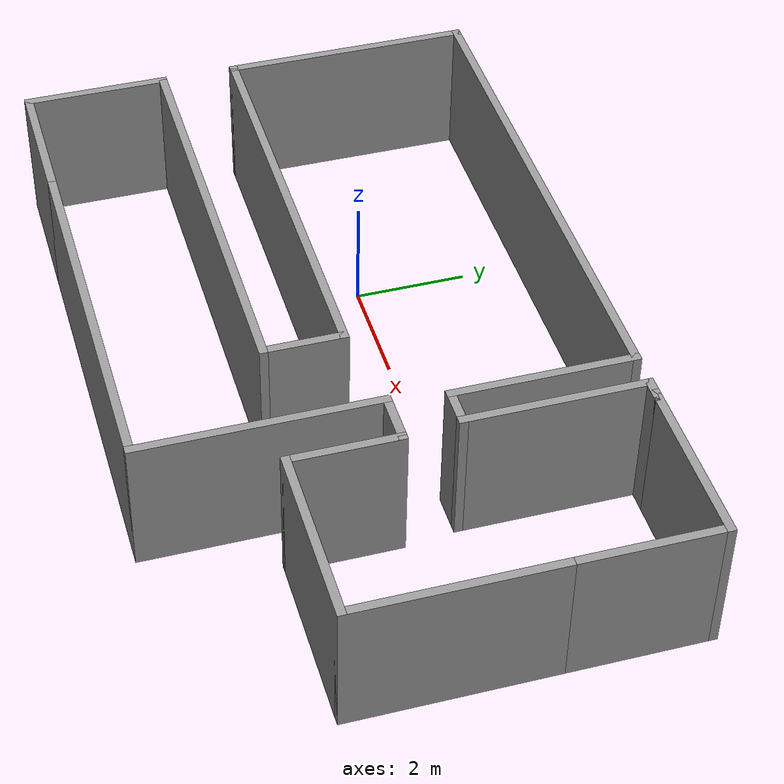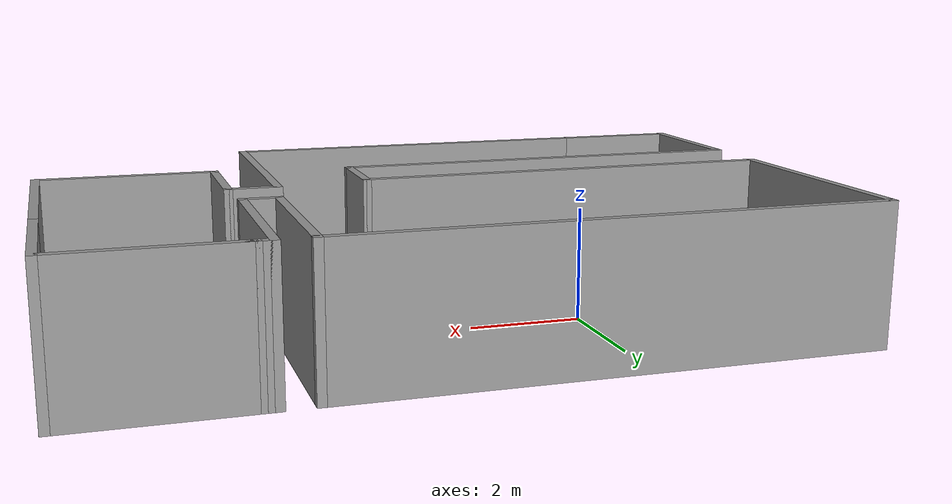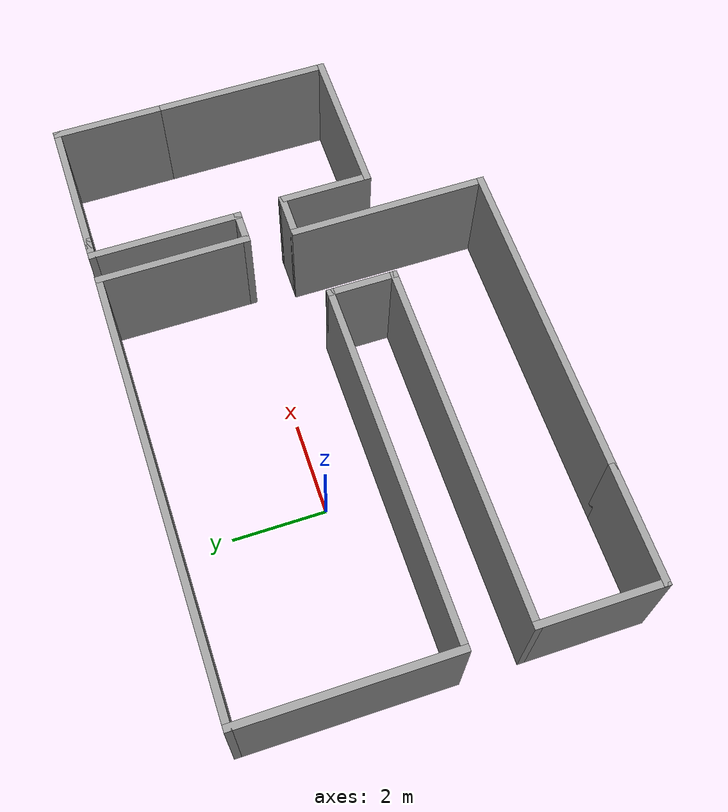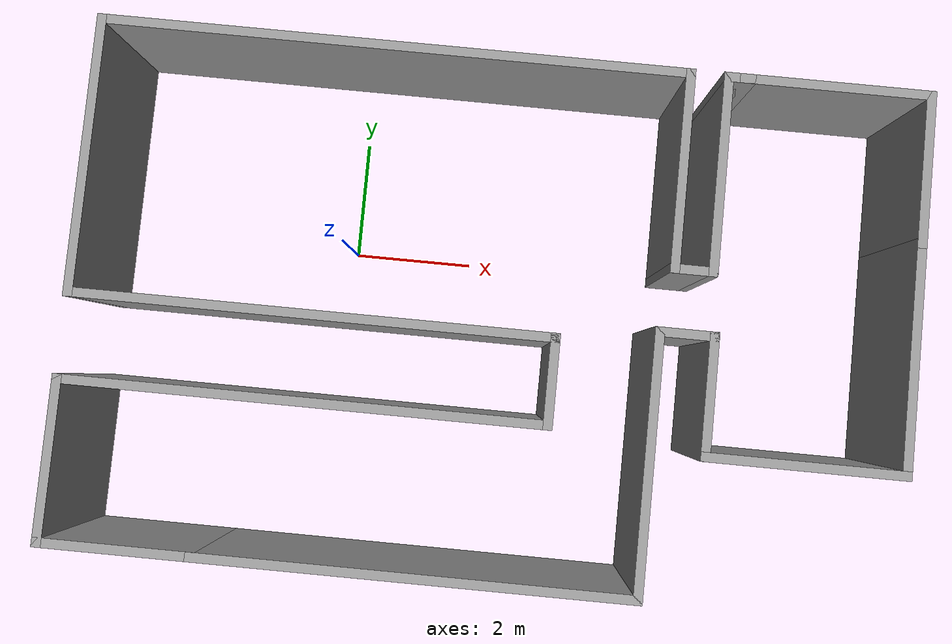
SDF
<?xml version='1.0'?>
<sdf version='1.7'>
  <model name='simple_rooms'>
    <pose>2.49975 -1.00745 0 0 -0 0</pose>
    <link name='Wall_0'>
      <collision name='Wall_0_Collision'>
        <geometry>
          <box>
            <size>7 0.15 2.5</size>
          </box>
        </geometry>
        <pose>0 0 1.25 0 -0 0</pose>
      </collision>
      <visual name='Wall_0_Visual'>
        <pose>0 0 1.25 0 -0 0</pose>
        <geometry>
          <box>
            <size>7 0.15 2.5</size>
          </box>
        </geometry>
        <material>
          <script>
            <uri>file://media/materials/scripts/gazebo.material</uri>
            <name>Gazebo/Grey</name>
          </script>
          <ambient>1 1 1 1</ambient>
        </material>
        <meta>
          <layer>0</layer>
        </meta>
      </visual>
      <pose>-0.8 -4.1 0 0 -0 0</pose>
    </link>
    <link name='Wall_1'>
      <collision name='Wall_1_Collision'>
        <geometry>
          <box>
            <size>4.25 0.15 2.5</size>
          </box>
        </geometry>
        <pose>0 0 1.25 0 -0 0</pose>
      </collision>
      <visual name='Wall_1_Visual'>
        <pose>0 0 1.25 0 -0 0</pose>
        <geometry>
          <box>
            <size>4.25 0.15 2.5</size>
          </box>
        </geometry>
        <material>
          <script>
            <uri>file://media/materials/scripts/gazebo.material</uri>
            <name>Gazebo/Grey</name>
          </script>
          <ambient>1 1 1 1</ambient>
        </material>
        <meta>
          <layer>0</layer>
        </meta>
      </visual>
      <pose>2.625 -2.05 0 0 -0 1.5708</pose>
    </link>
    <link name='Wall_10'>
      <collision name='Wall_10_Collision'>
        <geometry>
          <box>
            <size>0.25 0.15 2.5</size>
          </box>
        </geometry>
        <pose>0 0 1.25 0 -0 0</pose>
      </collision>
      <visual name='Wall_10_Visual'>
        <pose>0 0 1.25 0 -0 0</pose>
        <geometry>
          <box>
            <size>0.25 0.15 2.5</size>
          </box>
        </geometry>
        <material>
          <script>
            <uri>file://media/materials/scripts/gazebo.material</uri>
            <name>Gazebo/Grey</name>
          </script>
          <ambient>1 1 1 1</ambient>
        </material>
        <meta>
          <layer>0</layer>
        </meta>
      </visual>
      <pose>3.675 4.1 0 0 -0 3.14159</pose>
    </link>
    <link name='Wall_13'>
      <collision name='Wall_13_Collision'>
        <geometry>
          <box>
            <size>0.5 0.15 2.5</size>
          </box>
        </geometry>
        <pose>0 0 1.25 0 -0 0</pose>
      </collision>
      <visual name='Wall_13_Visual'>
        <pose>0 0 1.25 0 -0 0</pose>
        <geometry>
          <box>
            <size>0.5 0.15 2.5</size>
          </box>
        </geometry>
        <material>
          <script>
            <uri>file://media/materials/scripts/gazebo.material</uri>
            <name>Gazebo/Grey</name>
          </script>
          <ambient>1 1 1 1</ambient>
        </material>
        <meta>
          <layer>0</layer>
        </meta>
      </visual>
      <pose>3.55 4.1 0 0 -0 3.14159</pose>
    </link>
    <link name='Wall_14'>
      <collision name='Wall_14_Collision'>
        <geometry>
          <box>
            <size>3.25 0.15 2.5</size>
          </box>
        </geometry>
        <pose>0 0 1.25 0 -0 0</pose>
      </collision>
      <visual name='Wall_14_Visual'>
        <pose>0 0 1.25 0 -0 0</pose>
        <geometry>
          <box>
            <size>3.25 0.15 2.5</size>
          </box>
        </geometry>
        <material>
          <script>
            <uri>file://media/materials/scripts/gazebo.material</uri>
            <name>Gazebo/Grey</name>
          </script>
          <ambient>1 1 1 1</ambient>
        </material>
        <meta>
          <layer>0</layer>
        </meta>
      </visual>
      <pose>3.375 2.55 0 0 -0 -1.5708</pose>
    </link>
    <link name='Wall_15'>
      <collision name='Wall_15_Collision'>
        <geometry>
          <box>
            <size>0.75 0.15 2.5</size>
          </box>
        </geometry>
        <pose>0 0 1.25 0 -0 0</pose>
      </collision>
      <visual name='Wall_15_Visual'>
        <pose>0 0 1.25 0 -0 0</pose>
        <geometry>
          <box>
            <size>0.75 0.15 2.5</size>
          </box>
        </geometry>
        <material>
          <script>
            <uri>file://media/materials/scripts/gazebo.material</uri>
            <name>Gazebo/Grey</name>
          </script>
          <ambient>1 1 1 1</ambient>
        </material>
        <meta>
          <layer>0</layer>
        </meta>
      </visual>
      <pose>3.075 1 0 0 -0 -3.14159</pose>
    </link>
    <link name='Wall_16'>
      <collision name='Wall_16_Collision'>
        <geometry>
          <box>
            <size>3.25 0.15 2.5</size>
          </box>
        </geometry>
        <pose>0 0 1.25 0 -0 0</pose>
      </collision>
      <visual name='Wall_16_Visual'>
        <pose>0 0 1.25 0 -0 0</pose>
        <geometry>
          <box>
            <size>3.25 0.15 2.5</size>
          </box>
        </geometry>
        <material>
          <script>
            <uri>file://media/materials/scripts/gazebo.material</uri>
            <name>Gazebo/Grey</name>
          </script>
          <ambient>1 1 1 1</ambient>
        </material>
        <meta>
          <layer>0</layer>
        </meta>
      </visual>
      <pose>2.775 2.55 0 0 -0 1.5708</pose>
    </link>
    <link name='Wall_17'>
      <collision name='Wall_17_Collision'>
        <geometry>
          <box>
            <size>9.5 0.15 2.5</size>
          </box>
        </geometry>
        <pose>0 0 1.25 0 -0 0</pose>
      </collision>
      <visual name='Wall_17_Visual'>
        <pose>0 0 1.25 0 -0 0</pose>
        <geometry>
          <box>
            <size>9.5 0.15 2.5</size>
          </box>
        </geometry>
        <material>
          <script>
            <uri>file://media/materials/scripts/gazebo.material</uri>
            <name>Gazebo/Grey</name>
          </script>
          <ambient>1 1 1 1</ambient>
        </material>
        <meta>
          <layer>0</layer>
        </meta>
      </visual>
      <pose>-1.9 4.1 0 0 -0 3.14159</pose>
    </link>
    <link name='Wall_18'>
      <collision name='Wall_18_Collision'>
        <geometry>
          <box>
            <size>4.5 0.15 2.5</size>
          </box>
        </geometry>
        <pose>0 0 1.25 0 -0 0</pose>
      </collision>
      <visual name='Wall_18_Visual'>
        <pose>0 0 1.25 0 -0 0</pose>
        <geometry>
          <box>
            <size>4.5 0.15 2.5</size>
          </box>
        </geometry>
        <material>
          <script>
            <uri>file://media/materials/scripts/gazebo.material</uri>
            <name>Gazebo/Grey</name>
          </script>
          <ambient>1 1 1 1</ambient>
        </material>
        <meta>
          <layer>0</layer>
        </meta>
      </visual>
      <pose>-6.575 1.925 0 0 -0 -1.5708</pose>
    </link>
    <link name='Wall_19'>
      <collision name='Wall_19_Collision'>
        <geometry>
          <box>
            <size>7.75 0.15 2.5</size>
          </box>
        </geometry>
        <pose>0 0 1.25 0 -0 0</pose>
      </collision>
      <visual name='Wall_19_Visual'>
        <pose>0 0 1.25 0 -0 0</pose>
        <geometry>
          <box>
            <size>7.75 0.15 2.5</size>
          </box>
        </geometry>
        <material>
          <script>
            <uri>file://media/materials/scripts/gazebo.material</uri>
            <name>Gazebo/Grey</name>
          </script>
          <ambient>1 1 1 1</ambient>
        </material>
        <meta>
          <layer>0</layer>
        </meta>
      </visual>
      <pose>-2.775 -0.25 0 0 -0 0</pose>
    </link>
    <link name='Wall_2'>
      <collision name='Wall_2_Collision'>
        <geometry>
          <box>
            <size>1 0.15 2.5</size>
          </box>
        </geometry>
        <pose>0 0 1.25 0 -0 0</pose>
      </collision>
      <visual name='Wall_2_Visual'>
        <pose>0 0 1.25 0 -0 0</pose>
        <geometry>
          <box>
            <size>1 0.15 2.5</size>
          </box>
        </geometry>
        <material>
          <script>
            <uri>file://media/materials/scripts/gazebo.material</uri>
            <name>Gazebo/Grey</name>
          </script>
          <ambient>1 1 1 1</ambient>
        </material>
        <meta>
          <layer>0</layer>
        </meta>
      </visual>
      <pose>3.05 0 0 0 -0 0</pose>
    </link>
    <link name='Wall_20'>
      <collision name='Wall_20_Collision'>
        <geometry>
          <box>
            <size>1.5 0.15 2.5</size>
          </box>
        </geometry>
        <pose>0 0 1.25 0 -0 0</pose>
      </collision>
      <visual name='Wall_20_Visual'>
        <pose>0 0 1.25 0 -0 0</pose>
        <geometry>
          <box>
            <size>1.5 0.15 2.5</size>
          </box>
        </geometry>
        <material>
          <script>
            <uri>file://media/materials/scripts/gazebo.material</uri>
            <name>Gazebo/Grey</name>
          </script>
          <ambient>1 1 1 1</ambient>
        </material>
        <meta>
          <layer>0</layer>
        </meta>
      </visual>
      <pose>1.025 -0.925 0 0 -0 -1.5708</pose>
    </link>
    <link name='Wall_21'>
      <collision name='Wall_21_Collision'>
        <geometry>
          <box>
            <size>7.75 0.15 2.5</size>
          </box>
        </geometry>
        <pose>0 0 1.25 0 -0 0</pose>
      </collision>
      <visual name='Wall_21_Visual'>
        <pose>0 0 1.25 0 -0 0</pose>
        <geometry>
          <box>
            <size>7.75 0.15 2.5</size>
          </box>
        </geometry>
        <material>
          <script>
            <uri>file://media/materials/scripts/gazebo.material</uri>
            <name>Gazebo/Grey</name>
          </script>
          <ambient>1 1 1 1</ambient>
        </material>
        <meta>
          <layer>0</layer>
        </meta>
      </visual>
      <pose>-2.775 -1.6 0 0 -0 3.14159</pose>
    </link>
    <link name='Wall_22'>
      <collision name='Wall_22_Collision'>
        <geometry>
          <box>
            <size>2.65 0.15 2.5</size>
          </box>
        </geometry>
        <pose>0 0 1.25 0 -0 0</pose>
      </collision>
      <visual name='Wall_22_Visual'>
        <pose>0 0 1.25 0 -0 0</pose>
        <geometry>
          <box>
            <size>2.65 0.15 2.5</size>
          </box>
        </geometry>
        <material>
          <script>
            <uri>file://media/materials/scripts/gazebo.material</uri>
            <name>Gazebo/Grey</name>
          </script>
          <ambient>1 1 1 1</ambient>
        </material>
        <meta>
          <layer>0</layer>
        </meta>
      </visual>
      <pose>-6.575 -2.85 0 0 -0 -1.5708</pose>
    </link>
    <link name='Wall_23'>
      <collision name='Wall_23_Collision'>
        <geometry>
          <box>
            <size>2.5 0.15 2.5</size>
          </box>
        </geometry>
        <pose>0 0 1.25 0 -0 0</pose>
      </collision>
      <visual name='Wall_23_Visual'>
        <pose>0 0 1.25 0 -0 0</pose>
        <geometry>
          <box>
            <size>2.5 0.15 2.5</size>
          </box>
        </geometry>
        <material>
          <script>
            <uri>file://media/materials/scripts/gazebo.material</uri>
            <name>Gazebo/Grey</name>
          </script>
          <ambient>1 1 1 1</ambient>
        </material>
        <meta>
          <layer>0</layer>
        </meta>
      </visual>
      <pose>-5.4 -4.1 0 0 -0 0</pose>
    </link>
    <link name='Wall_3'>
      <collision name='Wall_3_Collision'>
        <geometry>
          <box>
            <size>2 0.15 2.5</size>
          </box>
        </geometry>
        <pose>0 0 1.25 0 -0 0</pose>
      </collision>
      <visual name='Wall_3_Visual'>
        <pose>0 0 1.25 0 -0 0</pose>
        <geometry>
          <box>
            <size>2 0.15 2.5</size>
          </box>
        </geometry>
        <material>
          <script>
            <uri>file://media/materials/scripts/gazebo.material</uri>
            <name>Gazebo/Grey</name>
          </script>
          <ambient>1 1 1 1</ambient>
        </material>
        <meta>
          <layer>0</layer>
        </meta>
      </visual>
      <pose>3.475 -0.925 0 0 -0 -1.5708</pose>
    </link>
    <link name='Wall_4'>
      <collision name='Wall_4_Collision'>
        <geometry>
          <box>
            <size>3.25 0.15 2.5</size>
          </box>
        </geometry>
        <pose>0 0 1.25 0 -0 0</pose>
      </collision>
      <visual name='Wall_4_Visual'>
        <pose>0 0 1.25 0 -0 0</pose>
        <geometry>
          <box>
            <size>3.25 0.15 2.5</size>
          </box>
        </geometry>
        <material>
          <script>
            <uri>file://media/materials/scripts/gazebo.material</uri>
            <name>Gazebo/Grey</name>
          </script>
          <ambient>1 1 1 1</ambient>
        </material>
        <meta>
          <layer>0</layer>
        </meta>
      </visual>
      <pose>5.025 -1.85 0 0 -0 0</pose>
    </link>
    <link name='Wall_5'>
      <collision name='Wall_5_Collision'>
        <geometry>
          <box>
            <size>3.75 0.15 2.5</size>
          </box>
        </geometry>
        <pose>0 0 1.25 0 -0 0</pose>
      </collision>
      <visual name='Wall_5_Visual'>
        <pose>0 0 1.25 0 -0 0</pose>
        <geometry>
          <box>
            <size>3.75 0.15 2.5</size>
          </box>
        </geometry>
        <material>
          <script>
            <uri>file://media/materials/scripts/gazebo.material</uri>
            <name>Gazebo/Grey</name>
          </script>
          <ambient>1 1 1 1</ambient>
        </material>
        <meta>
          <layer>0</layer>
        </meta>
      </visual>
      <pose>6.575 -0.05 0 0 -0 1.5708</pose>
    </link>
    <link name='Wall_8'>
      <collision name='Wall_8_Collision'>
        <geometry>
          <box>
            <size>2.5 0.15 2.5</size>
          </box>
        </geometry>
        <pose>0 0 1.25 0 -0 0</pose>
      </collision>
      <visual name='Wall_8_Visual'>
        <pose>0 0 1.25 0 -0 0</pose>
        <geometry>
          <box>
            <size>2.5 0.15 2.5</size>
          </box>
        </geometry>
        <material>
          <script>
            <uri>file://media/materials/scripts/gazebo.material</uri>
            <name>Gazebo/Grey</name>
          </script>
          <ambient>1 1 1 1</ambient>
        </material>
        <meta>
          <layer>0</layer>
        </meta>
      </visual>
      <pose>6.575 2.925 0 0 -0 1.5708</pose>
    </link>
    <link name='Wall_9'>
      <collision name='Wall_9_Collision'>
        <geometry>
          <box>
            <size>3 0.15 2.5</size>
          </box>
        </geometry>
        <pose>0 0 1.25 0 -0 0</pose>
      </collision>
      <visual name='Wall_9_Visual'>
        <pose>0 0 1.25 0 -0 0</pose>
        <geometry>
          <box>
            <size>3 0.15 2.5</size>
          </box>
        </geometry>
        <material>
          <script>
            <uri>file://media/materials/scripts/gazebo.material</uri>
            <name>Gazebo/Grey</name>
          </script>
          <ambient>1 1 1 1</ambient>
        </material>
        <meta>
          <layer>0</layer>
        </meta>
      </visual>
      <pose>5.15 4.1 0 0 -0 3.14159</pose>
    </link>
    <static>1</static>
  </model>
</sdf>
